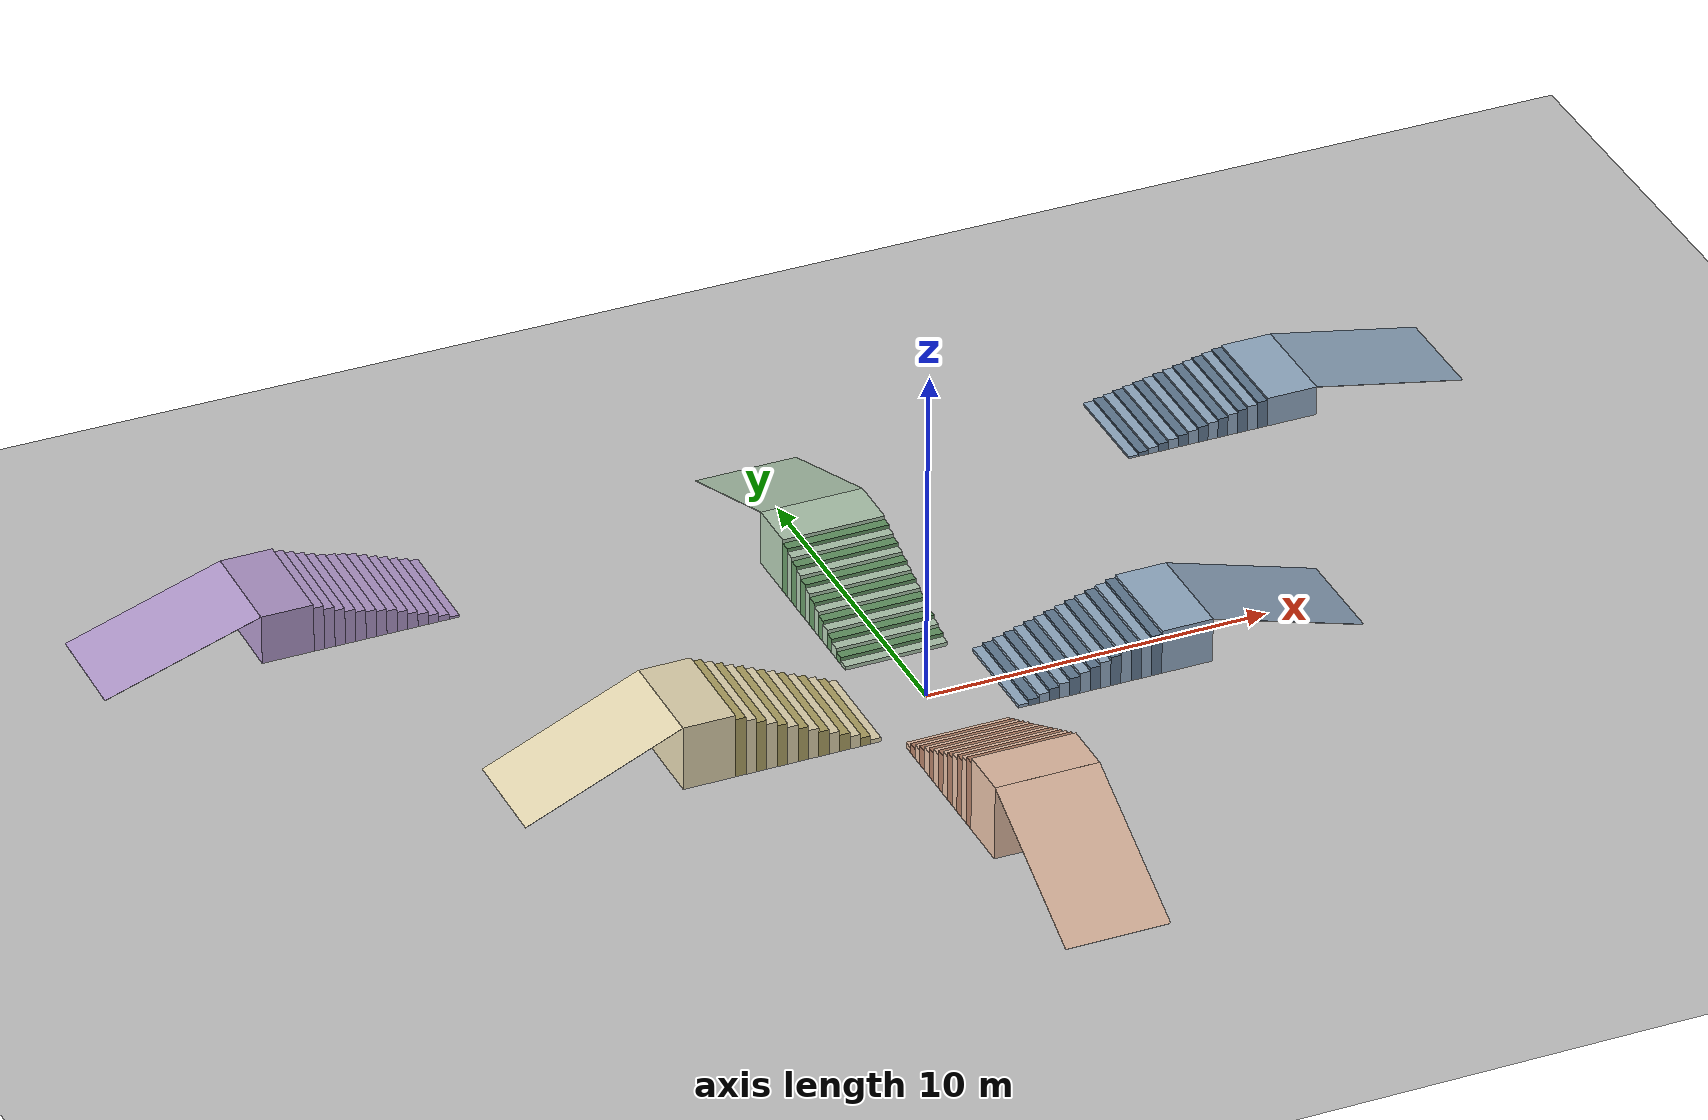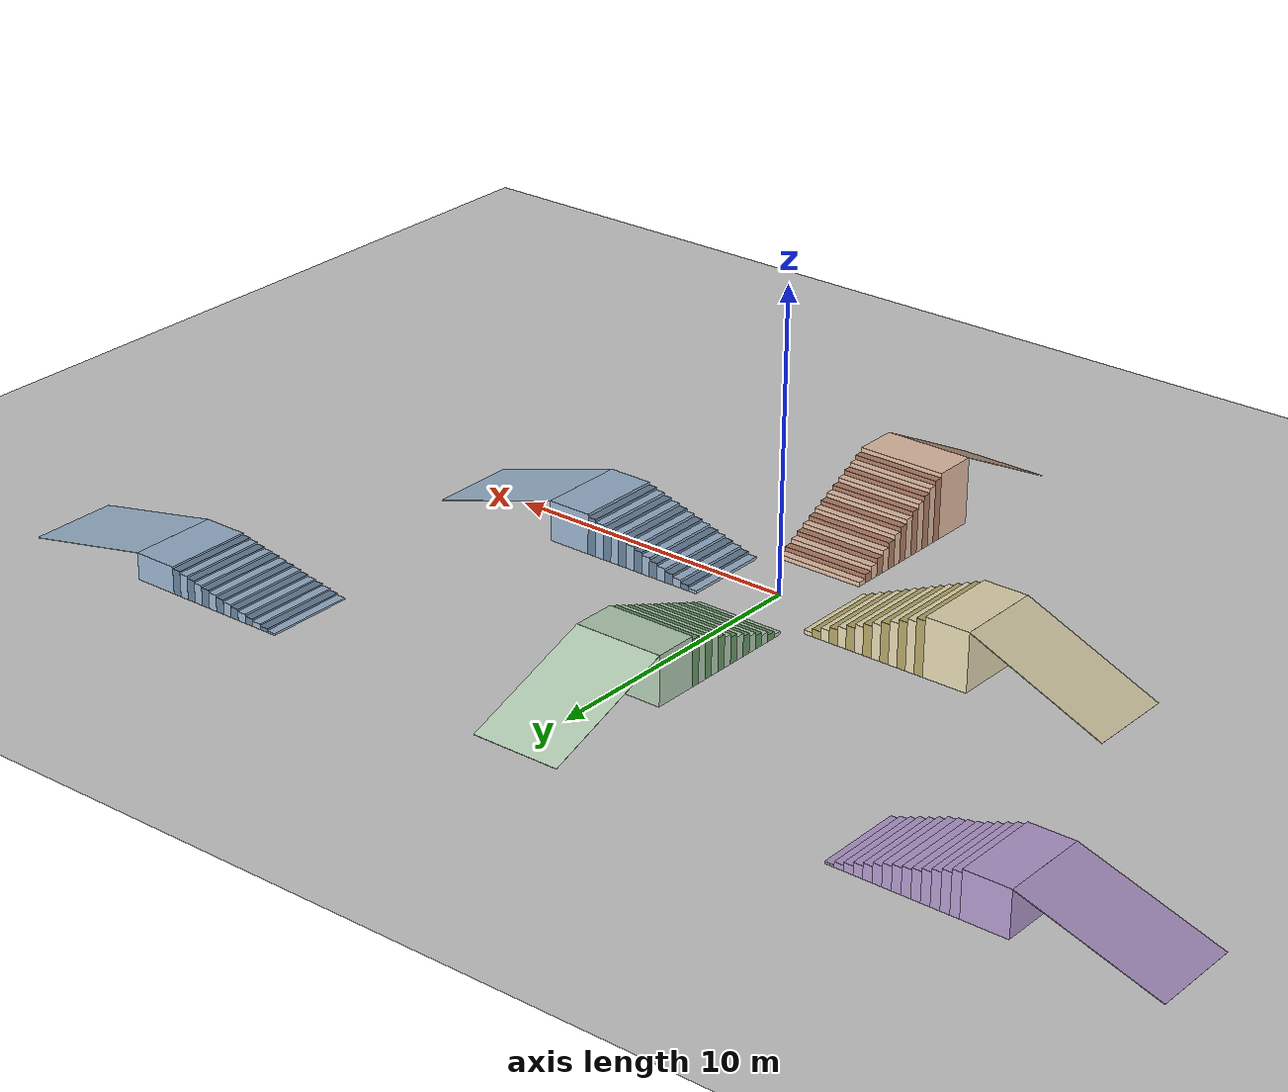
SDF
<?xml version="1.0" ?>
<sdf version="1.5">
  <world name="quadruped_stair_pro_v3_friction">

    <gui fullscreen='0'>
      <camera name='user_camera'>
        <pose>0.014996 6.624318 4.504067 0.0 0.439642 -1.572989</pose> <!-- USER_CAMERA_POSE -->
        <view_controller>orbit</view_controller>
      </camera>
    </gui>

    <physics type="ode">
      <max_step_size>0.0005</max_step_size>
      <real_time_factor>1</real_time_factor>
      <real_time_update_rate>2000</real_time_update_rate>
      <gravity>0 0 -9.81</gravity>
      <ode>
        <solver>
          <type>quick</type>
          <iters>150</iters>
          <sor>1.0</sor>
        </solver>
        <constraints>
          <cfm>0.0001</cfm>
          <erp>0.2</erp>
          <contact_max_correcting_vel>10.0</contact_max_correcting_vel>
          <contact_surface_layer>0.001</contact_surface_layer>
        </constraints>
      </ode>
    </physics>

    <include><uri>model://sun</uri></include>

    <model name="ground_plane_friction">
      <static>true</static>
      <link name="link">
        <collision name="collision">
          <geometry><plane><normal>0 0 1</normal><size>100 100</size></plane></geometry>
          <surface>
            <friction>
              <ode><mu>1.0</mu><mu2>1.0</mu2></ode>
            </friction>
          </surface>
        </collision>
        <visual name="visual">
          <geometry><plane><normal>0 0 1</normal><size>100 100</size></plane></geometry>
          <material><ambient>0.8 0.8 0.8 1</ambient><diffuse>0.8 0.8 0.8 1</diffuse></material>
        </visual>
      </link>
<link name="step_staggered_1"><pose>-10.1500 10.0000 0.0337 0 -0.0000 0</pose><visual name="v"><geometry><box><size>0.3 3.0 0.0673</size></box></geometry><material><ambient>0.7 0.6 0.8 1</ambient><diffuse>0.7 0.6 0.8 1</diffuse></material></visual><collision name="c"><geometry><box><size>0.3 3.0 0.0673</size></box></geometry><surface><friction><ode><mu>1.0</mu><mu2>1.0</mu2></ode></friction></surface></collision></link>
        <link name="step_staggered_2"><pose>-10.4500 10.0000 0.0863 0 -0.0000 0</pose><visual name="v"><geometry><box><size>0.3 3.0 0.1726</size></box></geometry><material><ambient>0.7 0.6 0.8 1</ambient><diffuse>0.7 0.6 0.8 1</diffuse></material></visual><collision name="c"><geometry><box><size>0.3 3.0 0.1726</size></box></geometry><surface><friction><ode><mu>1.0</mu><mu2>1.0</mu2></ode></friction></surface></collision></link>
        <link name="step_staggered_3"><pose>-10.7500 10.0000 0.1351 0 -0.0000 0</pose><visual name="v"><geometry><box><size>0.3 3.0 0.2703</size></box></geometry><material><ambient>0.7 0.6 0.8 1</ambient><diffuse>0.7 0.6 0.8 1</diffuse></material></visual><collision name="c"><geometry><box><size>0.3 3.0 0.2703</size></box></geometry><surface><friction><ode><mu>1.0</mu><mu2>1.0</mu2></ode></friction></surface></collision></link>
        <link name="step_staggered_4"><pose>-11.0500 10.0000 0.1954 0 -0.0000 0</pose><visual name="v"><geometry><box><size>0.3 3.0 0.3907</size></box></geometry><material><ambient>0.7 0.6 0.8 1</ambient><diffuse>0.7 0.6 0.8 1</diffuse></material></visual><collision name="c"><geometry><box><size>0.3 3.0 0.3907</size></box></geometry><surface><friction><ode><mu>1.0</mu><mu2>1.0</mu2></ode></friction></surface></collision></link>
        <link name="step_staggered_5"><pose>-11.3500 10.0000 0.2445 0 -0.0000 0</pose><visual name="v"><geometry><box><size>0.3 3.0 0.4890</size></box></geometry><material><ambient>0.7 0.6 0.8 1</ambient><diffuse>0.7 0.6 0.8 1</diffuse></material></visual><collision name="c"><geometry><box><size>0.3 3.0 0.4890</size></box></geometry><surface><friction><ode><mu>1.0</mu><mu2>1.0</mu2></ode></friction></surface></collision></link>
        <link name="step_staggered_6"><pose>-11.6500 10.0000 0.3070 0 -0.0000 0</pose><visual name="v"><geometry><box><size>0.3 3.0 0.6139</size></box></geometry><material><ambient>0.7 0.6 0.8 1</ambient><diffuse>0.7 0.6 0.8 1</diffuse></material></visual><collision name="c"><geometry><box><size>0.3 3.0 0.6139</size></box></geometry><surface><friction><ode><mu>1.0</mu><mu2>1.0</mu2></ode></friction></surface></collision></link>
        <link name="step_staggered_7"><pose>-11.9500 10.0000 0.3656 0 -0.0000 0</pose><visual name="v"><geometry><box><size>0.3 3.0 0.7312</size></box></geometry><material><ambient>0.7 0.6 0.8 1</ambient><diffuse>0.7 0.6 0.8 1</diffuse></material></visual><collision name="c"><geometry><box><size>0.3 3.0 0.7312</size></box></geometry><surface><friction><ode><mu>1.0</mu><mu2>1.0</mu2></ode></friction></surface></collision></link>
        <link name="step_staggered_8"><pose>-12.2500 10.0000 0.4017 0 -0.0000 0</pose><visual name="v"><geometry><box><size>0.3 3.0 0.8034</size></box></geometry><material><ambient>0.7 0.6 0.8 1</ambient><diffuse>0.7 0.6 0.8 1</diffuse></material></visual><collision name="c"><geometry><box><size>0.3 3.0 0.8034</size></box></geometry><surface><friction><ode><mu>1.0</mu><mu2>1.0</mu2></ode></friction></surface></collision></link>
        <link name="step_staggered_9"><pose>-12.5500 10.0000 0.4331 0 -0.0000 0</pose><visual name="v"><geometry><box><size>0.3 3.0 0.8663</size></box></geometry><material><ambient>0.7 0.6 0.8 1</ambient><diffuse>0.7 0.6 0.8 1</diffuse></material></visual><collision name="c"><geometry><box><size>0.3 3.0 0.8663</size></box></geometry><surface><friction><ode><mu>1.0</mu><mu2>1.0</mu2></ode></friction></surface></collision></link>
        <link name="step_staggered_10"><pose>-12.8500 10.0000 0.4675 0 -0.0000 0</pose><visual name="v"><geometry><box><size>0.3 3.0 0.9349</size></box></geometry><material><ambient>0.7 0.6 0.8 1</ambient><diffuse>0.7 0.6 0.8 1</diffuse></material></visual><collision name="c"><geometry><box><size>0.3 3.0 0.9349</size></box></geometry><surface><friction><ode><mu>1.0</mu><mu2>1.0</mu2></ode></friction></surface></collision></link>
        <link name="step_staggered_11"><pose>-13.1500 10.0000 0.5169 0 -0.0000 0</pose><visual name="v"><geometry><box><size>0.3 3.0 1.0338</size></box></geometry><material><ambient>0.7 0.6 0.8 1</ambient><diffuse>0.7 0.6 0.8 1</diffuse></material></visual><collision name="c"><geometry><box><size>0.3 3.0 1.0338</size></box></geometry><surface><friction><ode><mu>1.0</mu><mu2>1.0</mu2></ode></friction></surface></collision></link>
        <link name="step_staggered_12"><pose>-13.4500 10.0000 0.5718 0 -0.0000 0</pose><visual name="v"><geometry><box><size>0.3 3.0 1.1436</size></box></geometry><material><ambient>0.7 0.6 0.8 1</ambient><diffuse>0.7 0.6 0.8 1</diffuse></material></visual><collision name="c"><geometry><box><size>0.3 3.0 1.1436</size></box></geometry><surface><friction><ode><mu>1.0</mu><mu2>1.0</mu2></ode></friction></surface></collision></link>
        <link name="step_staggered_13"><pose>-13.7500 10.0000 0.6300 0 -0.0000 0</pose><visual name="v"><geometry><box><size>0.3 3.0 1.2599</size></box></geometry><material><ambient>0.7 0.6 0.8 1</ambient><diffuse>0.7 0.6 0.8 1</diffuse></material></visual><collision name="c"><geometry><box><size>0.3 3.0 1.2599</size></box></geometry><surface><friction><ode><mu>1.0</mu><mu2>1.0</mu2></ode></friction></surface></collision></link>
        <link name="step_staggered_14"><pose>-14.0500 10.0000 0.6875 0 -0.0000 0</pose><visual name="v"><geometry><box><size>0.3 3.0 1.3749</size></box></geometry><material><ambient>0.7 0.6 0.8 1</ambient><diffuse>0.7 0.6 0.8 1</diffuse></material></visual><collision name="c"><geometry><box><size>0.3 3.0 1.3749</size></box></geometry><surface><friction><ode><mu>1.0</mu><mu2>1.0</mu2></ode></friction></surface></collision></link>
        <link name="step_staggered_15"><pose>-14.9500 10.0000 0.7428 0 -0.0000 0</pose><visual name="v"><geometry><box><size>1.5 3.0 1.4856</size></box></geometry><material><ambient>0.7 0.6 0.8 1</ambient><diffuse>0.7 0.6 0.8 1</diffuse></material></visual><collision name="c"><geometry><box><size>1.5 3.0 1.4856</size></box></geometry><surface><friction><ode><mu>1.0</mu><mu2>1.0</mu2></ode></friction></surface></collision></link>
        <link name="slope_staggered"><pose>-17.9500 10.0000 0.7378 0 -0.3189 0</pose><visual name="v"><geometry><box><size>4.7389 3.0 0.01</size></box></geometry><material><ambient>0.7 0.6 0.8 1</ambient><diffuse>0.7 0.6 0.8 1</diffuse></material></visual><collision name="c"><geometry><box><size>4.7389 3.0 0.01</size></box></geometry><surface><friction><ode><mu>5.0</mu><mu2>5.0</mu2></ode></friction></surface></collision></link>
    </model>

    <model name="stair_challenge_env">
        <static>true</static>

        <link name="step_9cm_1"><pose>2.15 0 0.045 0 0 0</pose><visual name="v"><geometry><box><size>0.3 3.0 0.09</size></box></geometry><material><ambient>0.6 0.7 0.8 1</ambient><diffuse>0.6 0.7 0.8 1</diffuse></material></visual><collision name="c"><geometry><box><size>0.3 3.0 0.09</size></box></geometry><surface><friction><ode><mu>1.0</mu><mu2>1.0</mu2></ode></friction></surface></collision></link>
        <link name="step_9cm_2"><pose>2.45 0 0.090 0 0 0</pose><visual name="v"><geometry><box><size>0.3 3.0 0.18</size></box></geometry><material><ambient>0.4 0.5 0.6 1</ambient><diffuse>0.4 0.5 0.6 1</diffuse></material></visual><collision name="c"><geometry><box><size>0.3 3.0 0.18</size></box></geometry><surface><friction><ode><mu>1.0</mu><mu2>1.0</mu2></ode></friction></surface></collision></link>
        <link name="step_9cm_3"><pose>2.75 0 0.135 0 0 0</pose><visual name="v"><geometry><box><size>0.3 3.0 0.27</size></box></geometry><material><ambient>0.6 0.7 0.8 1</ambient><diffuse>0.6 0.7 0.8 1</diffuse></material></visual><collision name="c"><geometry><box><size>0.3 3.0 0.27</size></box></geometry><surface><friction><ode><mu>1.0</mu><mu2>1.0</mu2></ode></friction></surface></collision></link>
        <link name="step_9cm_4"><pose>3.05 0 0.180 0 0 0</pose><visual name="v"><geometry><box><size>0.3 3.0 0.36</size></box></geometry><material><ambient>0.4 0.5 0.6 1</ambient><diffuse>0.4 0.5 0.6 1</diffuse></material></visual><collision name="c"><geometry><box><size>0.3 3.0 0.36</size></box></geometry><surface><friction><ode><mu>1.0</mu><mu2>1.0</mu2></ode></friction></surface></collision></link>
        <link name="step_9cm_5"><pose>3.35 0 0.225 0 0 0</pose><visual name="v"><geometry><box><size>0.3 3.0 0.45</size></box></geometry><material><ambient>0.6 0.7 0.8 1</ambient><diffuse>0.6 0.7 0.8 1</diffuse></material></visual><collision name="c"><geometry><box><size>0.3 3.0 0.45</size></box></geometry><surface><friction><ode><mu>1.0</mu><mu2>1.0</mu2></ode></friction></surface></collision></link>
        <link name="step_9cm_6"><pose>3.65 0 0.270 0 0 0</pose><visual name="v"><geometry><box><size>0.3 3.0 0.54</size></box></geometry><material><ambient>0.4 0.5 0.6 1</ambient><diffuse>0.4 0.5 0.6 1</diffuse></material></visual><collision name="c"><geometry><box><size>0.3 3.0 0.54</size></box></geometry><surface><friction><ode><mu>1.0</mu><mu2>1.0</mu2></ode></friction></surface></collision></link>
        <link name="step_9cm_7"><pose>3.95 0 0.315 0 0 0</pose><visual name="v"><geometry><box><size>0.3 3.0 0.63</size></box></geometry><material><ambient>0.6 0.7 0.8 1</ambient><diffuse>0.6 0.7 0.8 1</diffuse></material></visual><collision name="c"><geometry><box><size>0.3 3.0 0.63</size></box></geometry><surface><friction><ode><mu>1.0</mu><mu2>1.0</mu2></ode></friction></surface></collision></link>
        <link name="step_9cm_8"><pose>4.25 0 0.360 0 0 0</pose><visual name="v"><geometry><box><size>0.3 3.0 0.72</size></box></geometry><material><ambient>0.4 0.5 0.6 1</ambient><diffuse>0.4 0.5 0.6 1</diffuse></material></visual><collision name="c"><geometry><box><size>0.3 3.0 0.72</size></box></geometry><surface><friction><ode><mu>1.0</mu><mu2>1.0</mu2></ode></friction></surface></collision></link>
        <link name="step_9cm_9"><pose>4.55 0 0.405 0 0 0</pose><visual name="v"><geometry><box><size>0.3 3.0 0.81</size></box></geometry><material><ambient>0.6 0.7 0.8 1</ambient><diffuse>0.6 0.7 0.8 1</diffuse></material></visual><collision name="c"><geometry><box><size>0.3 3.0 0.81</size></box></geometry><surface><friction><ode><mu>1.0</mu><mu2>1.0</mu2></ode></friction></surface></collision></link>
        <link name="step_9cm_10"><pose>4.85 0 0.450 0 0 0</pose><visual name="v"><geometry><box><size>0.3 3.0 0.90</size></box></geometry><material><ambient>0.4 0.5 0.6 1</ambient><diffuse>0.4 0.5 0.6 1</diffuse></material></visual><collision name="c"><geometry><box><size>0.3 3.0 0.90</size></box></geometry><surface><friction><ode><mu>1.0</mu><mu2>1.0</mu2></ode></friction></surface></collision></link>
        <link name="step_9cm_11"><pose>5.15 0 0.495 0 0 0</pose><visual name="v"><geometry><box><size>0.3 3.0 0.99</size></box></geometry><material><ambient>0.6 0.7 0.8 1</ambient><diffuse>0.6 0.7 0.8 1</diffuse></material></visual><collision name="c"><geometry><box><size>0.3 3.0 0.99</size></box></geometry><surface><friction><ode><mu>1.0</mu><mu2>1.0</mu2></ode></friction></surface></collision></link>
        <link name="step_9cm_12"><pose>5.45 0 0.540 0 0 0</pose><visual name="v"><geometry><box><size>0.3 3.0 1.08</size></box></geometry><material><ambient>0.4 0.5 0.6 1</ambient><diffuse>0.4 0.5 0.6 1</diffuse></material></visual><collision name="c"><geometry><box><size>0.3 3.0 1.08</size></box></geometry><surface><friction><ode><mu>1.0</mu><mu2>1.0</mu2></ode></friction></surface></collision></link>
        <link name="step_9cm_13"><pose>5.75 0 0.585 0 0 0</pose><visual name="v"><geometry><box><size>0.3 3.0 1.17</size></box></geometry><material><ambient>0.6 0.7 0.8 1</ambient><diffuse>0.6 0.7 0.8 1</diffuse></material></visual><collision name="c"><geometry><box><size>0.3 3.0 1.17</size></box></geometry><surface><friction><ode><mu>1.0</mu><mu2>1.0</mu2></ode></friction></surface></collision></link>
        <link name="step_9cm_14"><pose>6.05 0 0.630 0 0 0</pose><visual name="v"><geometry><box><size>0.3 3.0 1.26</size></box></geometry><material><ambient>0.4 0.5 0.6 1</ambient><diffuse>0.4 0.5 0.6 1</diffuse></material></visual><collision name="c"><geometry><box><size>0.3 3.0 1.26</size></box></geometry><surface><friction><ode><mu>1.0</mu><mu2>1.0</mu2></ode></friction></surface></collision></link>
        <link name="step_9cm_15"><pose>6.95 0 0.675 0 0 0</pose><visual name="v"><geometry><box><size>1.5 3.0 1.35</size></box></geometry><material><ambient>0.6 0.7 0.8 1</ambient><diffuse>0.6 0.7 0.8 1</diffuse></material></visual><collision name="c"><geometry><box><size>1.5 3.0 1.35</size></box></geometry><surface><friction><ode><mu>1.0</mu><mu2>1.0</mu2></ode></friction></surface></collision></link>

        <link name="step_11cm_1"><pose>0 2.15 0.055 0 0 0</pose><visual name="v"><geometry><box><size>3.0 0.3 0.11</size></box></geometry><material><ambient>0.7 0.8 0.7 1</ambient><diffuse>0.7 0.8 0.7 1</diffuse></material></visual><collision name="c"><geometry><box><size>3.0 0.3 0.11</size></box></geometry><surface><friction><ode><mu>1.0</mu><mu2>1.0</mu2></ode></friction></surface></collision></link>
        <link name="step_11cm_2"><pose>0 2.45 0.110 0 0 0</pose><visual name="v"><geometry><box><size>3.0 0.3 0.22</size></box></geometry><material><ambient>0.4 0.6 0.4 1</ambient><diffuse>0.4 0.6 0.4 1</diffuse></material></visual><collision name="c"><geometry><box><size>3.0 0.3 0.22</size></box></geometry><surface><friction><ode><mu>1.0</mu><mu2>1.0</mu2></ode></friction></surface></collision></link>
        <link name="step_11cm_3"><pose>0 2.75 0.165 0 0 0</pose><visual name="v"><geometry><box><size>3.0 0.3 0.33</size></box></geometry><material><ambient>0.7 0.8 0.7 1</ambient><diffuse>0.7 0.8 0.7 1</diffuse></material></visual><collision name="c"><geometry><box><size>3.0 0.3 0.33</size></box></geometry><surface><friction><ode><mu>1.0</mu><mu2>1.0</mu2></ode></friction></surface></collision></link>
        <link name="step_11cm_4"><pose>0 3.05 0.220 0 0 0</pose><visual name="v"><geometry><box><size>3.0 0.3 0.44</size></box></geometry><material><ambient>0.4 0.6 0.4 1</ambient><diffuse>0.4 0.6 0.4 1</diffuse></material></visual><collision name="c"><geometry><box><size>3.0 0.3 0.44</size></box></geometry><surface><friction><ode><mu>1.0</mu><mu2>1.0</mu2></ode></friction></surface></collision></link>
        <link name="step_11cm_5"><pose>0 3.35 0.275 0 0 0</pose><visual name="v"><geometry><box><size>3.0 0.3 0.55</size></box></geometry><material><ambient>0.7 0.8 0.7 1</ambient><diffuse>0.7 0.8 0.7 1</diffuse></material></visual><collision name="c"><geometry><box><size>3.0 0.3 0.55</size></box></geometry><surface><friction><ode><mu>1.0</mu><mu2>1.0</mu2></ode></friction></surface></collision></link>
        <link name="step_11cm_6"><pose>0 3.65 0.330 0 0 0</pose><visual name="v"><geometry><box><size>3.0 0.3 0.66</size></box></geometry><material><ambient>0.4 0.6 0.4 1</ambient><diffuse>0.4 0.6 0.4 1</diffuse></material></visual><collision name="c"><geometry><box><size>3.0 0.3 0.66</size></box></geometry><surface><friction><ode><mu>1.0</mu><mu2>1.0</mu2></ode></friction></surface></collision></link>
        <link name="step_11cm_7"><pose>0 3.95 0.385 0 0 0</pose><visual name="v"><geometry><box><size>3.0 0.3 0.77</size></box></geometry><material><ambient>0.7 0.8 0.7 1</ambient><diffuse>0.7 0.8 0.7 1</diffuse></material></visual><collision name="c"><geometry><box><size>3.0 0.3 0.77</size></box></geometry><surface><friction><ode><mu>1.0</mu><mu2>1.0</mu2></ode></friction></surface></collision></link>
        <link name="step_11cm_8"><pose>0 4.25 0.440 0 0 0</pose><visual name="v"><geometry><box><size>3.0 0.3 0.88</size></box></geometry><material><ambient>0.4 0.6 0.4 1</ambient><diffuse>0.4 0.6 0.4 1</diffuse></material></visual><collision name="c"><geometry><box><size>3.0 0.3 0.88</size></box></geometry><surface><friction><ode><mu>1.0</mu><mu2>1.0</mu2></ode></friction></surface></collision></link>
        <link name="step_11cm_9"><pose>0 4.55 0.495 0 0 0</pose><visual name="v"><geometry><box><size>3.0 0.3 0.99</size></box></geometry><material><ambient>0.7 0.8 0.7 1</ambient><diffuse>0.7 0.8 0.7 1</diffuse></material></visual><collision name="c"><geometry><box><size>3.0 0.3 0.99</size></box></geometry><surface><friction><ode><mu>1.0</mu><mu2>1.0</mu2></ode></friction></surface></collision></link>
        <link name="step_11cm_10"><pose>0 4.85 0.550 0 0 0</pose><visual name="v"><geometry><box><size>3.0 0.3 1.10</size></box></geometry><material><ambient>0.4 0.6 0.4 1</ambient><diffuse>0.4 0.6 0.4 1</diffuse></material></visual><collision name="c"><geometry><box><size>3.0 0.3 1.10</size></box></geometry><surface><friction><ode><mu>1.0</mu><mu2>1.0</mu2></ode></friction></surface></collision></link>
        <link name="step_11cm_11"><pose>0 5.15 0.605 0 0 0</pose><visual name="v"><geometry><box><size>3.0 0.3 1.21</size></box></geometry><material><ambient>0.7 0.8 0.7 1</ambient><diffuse>0.7 0.8 0.7 1</diffuse></material></visual><collision name="c"><geometry><box><size>3.0 0.3 1.21</size></box></geometry><surface><friction><ode><mu>1.0</mu><mu2>1.0</mu2></ode></friction></surface></collision></link>
        <link name="step_11cm_12"><pose>0 5.45 0.660 0 0 0</pose><visual name="v"><geometry><box><size>3.0 0.3 1.32</size></box></geometry><material><ambient>0.4 0.6 0.4 1</ambient><diffuse>0.4 0.6 0.4 1</diffuse></material></visual><collision name="c"><geometry><box><size>3.0 0.3 1.32</size></box></geometry><surface><friction><ode><mu>1.0</mu><mu2>1.0</mu2></ode></friction></surface></collision></link>
        <link name="step_11cm_13"><pose>0 5.75 0.715 0 0 0</pose><visual name="v"><geometry><box><size>3.0 0.3 1.43</size></box></geometry><material><ambient>0.7 0.8 0.7 1</ambient><diffuse>0.7 0.8 0.7 1</diffuse></material></visual><collision name="c"><geometry><box><size>3.0 0.3 1.43</size></box></geometry><surface><friction><ode><mu>1.0</mu><mu2>1.0</mu2></ode></friction></surface></collision></link>
        <link name="step_11cm_14"><pose>0 6.05 0.770 0 0 0</pose><visual name="v"><geometry><box><size>3.0 0.3 1.54</size></box></geometry><material><ambient>0.4 0.6 0.4 1</ambient><diffuse>0.4 0.6 0.4 1</diffuse></material></visual><collision name="c"><geometry><box><size>3.0 0.3 1.54</size></box></geometry><surface><friction><ode><mu>1.0</mu><mu2>1.0</mu2></ode></friction></surface></collision></link>
        <link name="step_11cm_15"><pose>0 6.95 0.825 0 0 0</pose><visual name="v"><geometry><box><size>3.0 1.5 1.65</size></box></geometry><material><ambient>0.7 0.8 0.7 1</ambient><diffuse>0.7 0.8 0.7 1</diffuse></material></visual><collision name="c"><geometry><box><size>3.0 1.5 1.65</size></box></geometry><surface><friction><ode><mu>1.0</mu><mu2>1.0</mu2></ode></friction></surface></collision></link>

        <link name="step_13cm_1"><pose>-2.15 0 0.065 0 0 0</pose><visual name="v"><geometry><box><size>0.3 3.0 0.13</size></box></geometry><material><ambient>0.9 0.85 0.7 1</ambient><diffuse>0.9 0.85 0.7 1</diffuse></material></visual><collision name="c"><geometry><box><size>0.3 3.0 0.13</size></box></geometry><surface><friction><ode><mu>1.0</mu><mu2>1.0</mu2></ode></friction></surface></collision></link>
        <link name="step_13cm_2"><pose>-2.45 0 0.130 0 0 0</pose><visual name="v"><geometry><box><size>0.3 3.0 0.26</size></box></geometry><material><ambient>0.7 0.65 0.4 1</ambient><diffuse>0.7 0.65 0.4 1</diffuse></material></visual><collision name="c"><geometry><box><size>0.3 3.0 0.26</size></box></geometry><surface><friction><ode><mu>1.0</mu><mu2>1.0</mu2></ode></friction></surface></collision></link>
        <link name="step_13cm_3"><pose>-2.75 0 0.195 0 0 0</pose><visual name="v"><geometry><box><size>0.3 3.0 0.39</size></box></geometry><material><ambient>0.9 0.85 0.7 1</ambient><diffuse>0.9 0.85 0.7 1</diffuse></material></visual><collision name="c"><geometry><box><size>0.3 3.0 0.39</size></box></geometry><surface><friction><ode><mu>1.0</mu><mu2>1.0</mu2></ode></friction></surface></collision></link>
        <link name="step_13cm_4"><pose>-3.05 0 0.260 0 0 0</pose><visual name="v"><geometry><box><size>0.3 3.0 0.52</size></box></geometry><material><ambient>0.7 0.65 0.4 1</ambient><diffuse>0.7 0.65 0.4 1</diffuse></material></visual><collision name="c"><geometry><box><size>0.3 3.0 0.52</size></box></geometry><surface><friction><ode><mu>1.0</mu><mu2>1.0</mu2></ode></friction></surface></collision></link>
        <link name="step_13cm_5"><pose>-3.35 0 0.325 0 0 0</pose><visual name="v"><geometry><box><size>0.3 3.0 0.65</size></box></geometry><material><ambient>0.9 0.85 0.7 1</ambient><diffuse>0.9 0.85 0.7 1</diffuse></material></visual><collision name="c"><geometry><box><size>0.3 3.0 0.65</size></box></geometry><surface><friction><ode><mu>1.0</mu><mu2>1.0</mu2></ode></friction></surface></collision></link>
        <link name="step_13cm_6"><pose>-3.65 0 0.390 0 0 0</pose><visual name="v"><geometry><box><size>0.3 3.0 0.78</size></box></geometry><material><ambient>0.7 0.65 0.4 1</ambient><diffuse>0.7 0.65 0.4 1</diffuse></material></visual><collision name="c"><geometry><box><size>0.3 3.0 0.78</size></box></geometry><surface><friction><ode><mu>1.0</mu><mu2>1.0</mu2></ode></friction></surface></collision></link>
        <link name="step_13cm_7"><pose>-3.95 0 0.455 0 0 0</pose><visual name="v"><geometry><box><size>0.3 3.0 0.91</size></box></geometry><material><ambient>0.9 0.85 0.7 1</ambient><diffuse>0.9 0.85 0.7 1</diffuse></material></visual><collision name="c"><geometry><box><size>0.3 3.0 0.91</size></box></geometry><surface><friction><ode><mu>1.0</mu><mu2>1.0</mu2></ode></friction></surface></collision></link>
        <link name="step_13cm_8"><pose>-4.25 0 0.520 0 0 0</pose><visual name="v"><geometry><box><size>0.3 3.0 1.04</size></box></geometry><material><ambient>0.7 0.65 0.4 1</ambient><diffuse>0.7 0.65 0.4 1</diffuse></material></visual><collision name="c"><geometry><box><size>0.3 3.0 1.04</size></box></geometry><surface><friction><ode><mu>1.0</mu><mu2>1.0</mu2></ode></friction></surface></collision></link>
        <link name="step_13cm_9"><pose>-4.55 0 0.585 0 0 0</pose><visual name="v"><geometry><box><size>0.3 3.0 1.17</size></box></geometry><material><ambient>0.9 0.85 0.7 1</ambient><diffuse>0.9 0.85 0.7 1</diffuse></material></visual><collision name="c"><geometry><box><size>0.3 3.0 1.17</size></box></geometry><surface><friction><ode><mu>1.0</mu><mu2>1.0</mu2></ode></friction></surface></collision></link>
        <link name="step_13cm_10"><pose>-4.85 0 0.650 0 0 0</pose><visual name="v"><geometry><box><size>0.3 3.0 1.30</size></box></geometry><material><ambient>0.7 0.65 0.4 1</ambient><diffuse>0.7 0.65 0.4 1</diffuse></material></visual><collision name="c"><geometry><box><size>0.3 3.0 1.30</size></box></geometry><surface><friction><ode><mu>1.0</mu><mu2>1.0</mu2></ode></friction></surface></collision></link>
        <link name="step_13cm_11"><pose>-5.15 0 0.715 0 0 0</pose><visual name="v"><geometry><box><size>0.3 3.0 1.43</size></box></geometry><material><ambient>0.9 0.85 0.7 1</ambient><diffuse>0.9 0.85 0.7 1</diffuse></material></visual><collision name="c"><geometry><box><size>0.3 3.0 1.43</size></box></geometry><surface><friction><ode><mu>1.0</mu><mu2>1.0</mu2></ode></friction></surface></collision></link>
        <link name="step_13cm_12"><pose>-5.45 0 0.780 0 0 0</pose><visual name="v"><geometry><box><size>0.3 3.0 1.56</size></box></geometry><material><ambient>0.7 0.65 0.4 1</ambient><diffuse>0.7 0.65 0.4 1</diffuse></material></visual><collision name="c"><geometry><box><size>0.3 3.0 1.56</size></box></geometry><surface><friction><ode><mu>1.0</mu><mu2>1.0</mu2></ode></friction></surface></collision></link>
        <link name="step_13cm_13"><pose>-5.75 0 0.845 0 0 0</pose><visual name="v"><geometry><box><size>0.3 3.0 1.69</size></box></geometry><material><ambient>0.9 0.85 0.7 1</ambient><diffuse>0.9 0.85 0.7 1</diffuse></material></visual><collision name="c"><geometry><box><size>0.3 3.0 1.69</size></box></geometry><surface><friction><ode><mu>1.0</mu><mu2>1.0</mu2></ode></friction></surface></collision></link>
        <link name="step_13cm_14"><pose>-6.05 0 0.910 0 0 0</pose><visual name="v"><geometry><box><size>0.3 3.0 1.82</size></box></geometry><material><ambient>0.7 0.65 0.4 1</ambient><diffuse>0.7 0.65 0.4 1</diffuse></material></visual><collision name="c"><geometry><box><size>0.3 3.0 1.82</size></box></geometry><surface><friction><ode><mu>1.0</mu><mu2>1.0</mu2></ode></friction></surface></collision></link>
        <link name="step_13cm_15"><pose>-6.95 0 0.975 0 0 0</pose><visual name="v"><geometry><box><size>1.5 3.0 1.95</size></box></geometry><material><ambient>0.9 0.85 0.7 1</ambient><diffuse>0.9 0.85 0.7 1</diffuse></material></visual><collision name="c"><geometry><box><size>1.5 3.0 1.95</size></box></geometry><surface><friction><ode><mu>1.0</mu><mu2>1.0</mu2></ode></friction></surface></collision></link>

        <link name="step_15cm_1"><pose>0 -2.15 0.075 0 0 0</pose><visual name="v"><geometry><box><size>3.0 0.3 0.15</size></box></geometry><material><ambient>0.9 0.75 0.65 1</ambient><diffuse>0.9 0.75 0.65 1</diffuse></material></visual><collision name="c"><geometry><box><size>3.0 0.3 0.15</size></box></geometry><surface><friction><ode><mu>1.0</mu><mu2>1.0</mu2></ode></friction></surface></collision></link>
        <link name="step_15cm_2"><pose>0 -2.45 0.150 0 0 0</pose><visual name="v"><geometry><box><size>3.0 0.3 0.30</size></box></geometry><material><ambient>0.7 0.5 0.4 1</ambient><diffuse>0.7 0.5 0.4 1</diffuse></material></visual><collision name="c"><geometry><box><size>3.0 0.3 0.30</size></box></geometry><surface><friction><ode><mu>1.0</mu><mu2>1.0</mu2></ode></friction></surface></collision></link>
        <link name="step_15cm_3"><pose>0 -2.75 0.225 0 0 0</pose><visual name="v"><geometry><box><size>3.0 0.3 0.45</size></box></geometry><material><ambient>0.9 0.75 0.65 1</ambient><diffuse>0.9 0.75 0.65 1</diffuse></material></visual><collision name="c"><geometry><box><size>3.0 0.3 0.45</size></box></geometry><surface><friction><ode><mu>1.0</mu><mu2>1.0</mu2></ode></friction></surface></collision></link>
        <link name="step_15cm_4"><pose>0 -3.05 0.300 0 0 0</pose><visual name="v"><geometry><box><size>3.0 0.3 0.60</size></box></geometry><material><ambient>0.7 0.5 0.4 1</ambient><diffuse>0.7 0.5 0.4 1</diffuse></material></visual><collision name="c"><geometry><box><size>3.0 0.3 0.60</size></box></geometry><surface><friction><ode><mu>1.0</mu><mu2>1.0</mu2></ode></friction></surface></collision></link>
        <link name="step_15cm_5"><pose>0 -3.35 0.375 0 0 0</pose><visual name="v"><geometry><box><size>3.0 0.3 0.75</size></box></geometry><material><ambient>0.9 0.75 0.65 1</ambient><diffuse>0.9 0.75 0.65 1</diffuse></material></visual><collision name="c"><geometry><box><size>3.0 0.3 0.75</size></box></geometry><surface><friction><ode><mu>1.0</mu><mu2>1.0</mu2></ode></friction></surface></collision></link>
        <link name="step_15cm_6"><pose>0 -3.65 0.450 0 0 0</pose><visual name="v"><geometry><box><size>3.0 0.3 0.90</size></box></geometry><material><ambient>0.7 0.5 0.4 1</ambient><diffuse>0.7 0.5 0.4 1</diffuse></material></visual><collision name="c"><geometry><box><size>3.0 0.3 0.90</size></box></geometry><surface><friction><ode><mu>1.0</mu><mu2>1.0</mu2></ode></friction></surface></collision></link>
        <link name="step_15cm_7"><pose>0 -3.95 0.525 0 0 0</pose><visual name="v"><geometry><box><size>3.0 0.3 1.05</size></box></geometry><material><ambient>0.9 0.75 0.65 1</ambient><diffuse>0.9 0.75 0.65 1</diffuse></material></visual><collision name="c"><geometry><box><size>3.0 0.3 1.05</size></box></geometry><surface><friction><ode><mu>1.0</mu><mu2>1.0</mu2></ode></friction></surface></collision></link>
        <link name="step_15cm_8"><pose>0 -4.25 0.600 0 0 0</pose><visual name="v"><geometry><box><size>3.0 0.3 1.20</size></box></geometry><material><ambient>0.7 0.5 0.4 1</ambient><diffuse>0.7 0.5 0.4 1</diffuse></material></visual><collision name="c"><geometry><box><size>3.0 0.3 1.20</size></box></geometry><surface><friction><ode><mu>1.0</mu><mu2>1.0</mu2></ode></friction></surface></collision></link>
        <link name="step_15cm_9"><pose>0 -4.55 0.675 0 0 0</pose><visual name="v"><geometry><box><size>3.0 0.3 1.35</size></box></geometry><material><ambient>0.9 0.75 0.65 1</ambient><diffuse>0.9 0.75 0.65 1</diffuse></material></visual><collision name="c"><geometry><box><size>3.0 0.3 1.35</size></box></geometry><surface><friction><ode><mu>1.0</mu><mu2>1.0</mu2></ode></friction></surface></collision></link>
        <link name="step_15cm_10"><pose>0 -4.85 0.750 0 0 0</pose><visual name="v"><geometry><box><size>3.0 0.3 1.50</size></box></geometry><material><ambient>0.7 0.5 0.4 1</ambient><diffuse>0.7 0.5 0.4 1</diffuse></material></visual><collision name="c"><geometry><box><size>3.0 0.3 1.50</size></box></geometry><surface><friction><ode><mu>1.0</mu><mu2>1.0</mu2></ode></friction></surface></collision></link>
        <link name="step_15cm_11"><pose>0 -5.15 0.825 0 0 0</pose><visual name="v"><geometry><box><size>3.0 0.3 1.65</size></box></geometry><material><ambient>0.9 0.75 0.65 1</ambient><diffuse>0.9 0.75 0.65 1</diffuse></material></visual><collision name="c"><geometry><box><size>3.0 0.3 1.65</size></box></geometry><surface><friction><ode><mu>1.0</mu><mu2>1.0</mu2></ode></friction></surface></collision></link>
        <link name="step_15cm_12"><pose>0 -5.45 0.900 0 0 0</pose><visual name="v"><geometry><box><size>3.0 0.3 1.80</size></box></geometry><material><ambient>0.7 0.5 0.4 1</ambient><diffuse>0.7 0.5 0.4 1</diffuse></material></visual><collision name="c"><geometry><box><size>3.0 0.3 1.80</size></box></geometry><surface><friction><ode><mu>1.0</mu><mu2>1.0</mu2></ode></friction></surface></collision></link>
        <link name="step_15cm_13"><pose>0 -5.75 0.975 0 0 0</pose><visual name="v"><geometry><box><size>3.0 0.3 1.95</size></box></geometry><material><ambient>0.9 0.75 0.65 1</ambient><diffuse>0.9 0.75 0.65 1</diffuse></material></visual><collision name="c"><geometry><box><size>3.0 0.3 1.95</size></box></geometry><surface><friction><ode><mu>1.0</mu><mu2>1.0</mu2></ode></friction></surface></collision></link>
        <link name="step_15cm_14"><pose>0 -6.05 1.050 0 0 0</pose><visual name="v"><geometry><box><size>3.0 0.3 2.10</size></box></geometry><material><ambient>0.7 0.5 0.4 1</ambient><diffuse>0.7 0.5 0.4 1</diffuse></material></visual><collision name="c"><geometry><box><size>3.0 0.3 2.10</size></box></geometry><surface><friction><ode><mu>1.0</mu><mu2>1.0</mu2></ode></friction></surface></collision></link>
        <link name="step_15cm_15"><pose>0 -6.95 1.125 0 0 0</pose><visual name="v"><geometry><box><size>3.0 1.5 2.25</size></box></geometry><material><ambient>0.9 0.75 0.65 1</ambient><diffuse>0.9 0.75 0.65 1</diffuse></material></visual><collision name="c"><geometry><box><size>3.0 1.5 2.25</size></box></geometry><surface><friction><ode><mu>1.0</mu><mu2>1.0</mu2></ode></friction></surface></collision></link>

        <link name="step_6cm_1"><pose>10.00 10.0 0.030 0 0 0</pose><visual name="v"><geometry><box><size>0.3 3.0 0.06</size></box></geometry><material><ambient>0.6 0.7 0.8 1</ambient><diffuse>0.6 0.7 0.8 1</diffuse></material></visual><collision name="c"><geometry><box><size>0.3 3.0 0.06</size></box></geometry><surface><friction><ode><mu>1.0</mu><mu2>1.0</mu2></ode></friction></surface></collision></link>
        <link name="step_6cm_2"><pose>10.30 10.0 0.060 0 0 0</pose><visual name="v"><geometry><box><size>0.3 3.0 0.12</size></box></geometry><material><ambient>0.4 0.5 0.6 1</ambient><diffuse>0.4 0.5 0.6 1</diffuse></material></visual><collision name="c"><geometry><box><size>0.3 3.0 0.12</size></box></geometry><surface><friction><ode><mu>1.0</mu><mu2>1.0</mu2></ode></friction></surface></collision></link>
        <link name="step_6cm_3"><pose>10.60 10.0 0.090 0 0 0</pose><visual name="v"><geometry><box><size>0.3 3.0 0.18</size></box></geometry><material><ambient>0.6 0.7 0.8 1</ambient><diffuse>0.6 0.7 0.8 1</diffuse></material></visual><collision name="c"><geometry><box><size>0.3 3.0 0.18</size></box></geometry><surface><friction><ode><mu>1.0</mu><mu2>1.0</mu2></ode></friction></surface></collision></link>
        <link name="step_6cm_4"><pose>10.90 10.0 0.120 0 0 0</pose><visual name="v"><geometry><box><size>0.3 3.0 0.24</size></box></geometry><material><ambient>0.4 0.5 0.6 1</ambient><diffuse>0.4 0.5 0.6 1</diffuse></material></visual><collision name="c"><geometry><box><size>0.3 3.0 0.24</size></box></geometry><surface><friction><ode><mu>1.0</mu><mu2>1.0</mu2></ode></friction></surface></collision></link>
        <link name="step_6cm_5"><pose>11.20 10.0 0.150 0 0 0</pose><visual name="v"><geometry><box><size>0.3 3.0 0.30</size></box></geometry><material><ambient>0.6 0.7 0.8 1</ambient><diffuse>0.6 0.7 0.8 1</diffuse></material></visual><collision name="c"><geometry><box><size>0.3 3.0 0.30</size></box></geometry><surface><friction><ode><mu>1.0</mu><mu2>1.0</mu2></ode></friction></surface></collision></link>
        <link name="step_6cm_6"><pose>11.50 10.0 0.180 0 0 0</pose><visual name="v"><geometry><box><size>0.3 3.0 0.36</size></box></geometry><material><ambient>0.4 0.5 0.6 1</ambient><diffuse>0.4 0.5 0.6 1</diffuse></material></visual><collision name="c"><geometry><box><size>0.3 3.0 0.36</size></box></geometry><surface><friction><ode><mu>1.0</mu><mu2>1.0</mu2></ode></friction></surface></collision></link>
        <link name="step_6cm_7"><pose>11.80 10.0 0.210 0 0 0</pose><visual name="v"><geometry><box><size>0.3 3.0 0.42</size></box></geometry><material><ambient>0.6 0.7 0.8 1</ambient><diffuse>0.6 0.7 0.8 1</diffuse></material></visual><collision name="c"><geometry><box><size>0.3 3.0 0.42</size></box></geometry><surface><friction><ode><mu>1.0</mu><mu2>1.0</mu2></ode></friction></surface></collision></link>
        <link name="step_6cm_8"><pose>12.10 10.0 0.240 0 0 0</pose><visual name="v"><geometry><box><size>0.3 3.0 0.48</size></box></geometry><material><ambient>0.4 0.5 0.6 1</ambient><diffuse>0.4 0.5 0.6 1</diffuse></material></visual><collision name="c"><geometry><box><size>0.3 3.0 0.48</size></box></geometry><surface><friction><ode><mu>1.0</mu><mu2>1.0</mu2></ode></friction></surface></collision></link>
        <link name="step_6cm_9"><pose>12.40 10.0 0.270 0 0 0</pose><visual name="v"><geometry><box><size>0.3 3.0 0.54</size></box></geometry><material><ambient>0.6 0.7 0.8 1</ambient><diffuse>0.6 0.7 0.8 1</diffuse></material></visual><collision name="c"><geometry><box><size>0.3 3.0 0.54</size></box></geometry><surface><friction><ode><mu>1.0</mu><mu2>1.0</mu2></ode></friction></surface></collision></link>
        <link name="step_6cm_10"><pose>12.70 10.0 0.300 0 0 0</pose><visual name="v"><geometry><box><size>0.3 3.0 0.60</size></box></geometry><material><ambient>0.4 0.5 0.6 1</ambient><diffuse>0.4 0.5 0.6 1</diffuse></material></visual><collision name="c"><geometry><box><size>0.3 3.0 0.60</size></box></geometry><surface><friction><ode><mu>1.0</mu><mu2>1.0</mu2></ode></friction></surface></collision></link>
        <link name="step_6cm_11"><pose>13.00 10.0 0.330 0 0 0</pose><visual name="v"><geometry><box><size>0.3 3.0 0.66</size></box></geometry><material><ambient>0.6 0.7 0.8 1</ambient><diffuse>0.6 0.7 0.8 1</diffuse></material></visual><collision name="c"><geometry><box><size>0.3 3.0 0.66</size></box></geometry><surface><friction><ode><mu>1.0</mu><mu2>1.0</mu2></ode></friction></surface></collision></link>
        <link name="step_6cm_12"><pose>13.30 10.0 0.360 0 0 0</pose><visual name="v"><geometry><box><size>0.3 3.0 0.72</size></box></geometry><material><ambient>0.4 0.5 0.6 1</ambient><diffuse>0.4 0.5 0.6 1</diffuse></material></visual><collision name="c"><geometry><box><size>0.3 3.0 0.72</size></box></geometry><surface><friction><ode><mu>1.0</mu><mu2>1.0</mu2></ode></friction></surface></collision></link>
        <link name="step_6cm_13"><pose>13.60 10.0 0.390 0 0 0</pose><visual name="v"><geometry><box><size>0.3 3.0 0.78</size></box></geometry><material><ambient>0.6 0.7 0.8 1</ambient><diffuse>0.6 0.7 0.8 1</diffuse></material></visual><collision name="c"><geometry><box><size>0.3 3.0 0.78</size></box></geometry><surface><friction><ode><mu>1.0</mu><mu2>1.0</mu2></ode></friction></surface></collision></link>
        <link name="step_6cm_14"><pose>13.90 10.0 0.420 0 0 0</pose><visual name="v"><geometry><box><size>0.3 3.0 0.84</size></box></geometry><material><ambient>0.4 0.5 0.6 1</ambient><diffuse>0.4 0.5 0.6 1</diffuse></material></visual><collision name="c"><geometry><box><size>0.3 3.0 0.84</size></box></geometry><surface><friction><ode><mu>1.0</mu><mu2>1.0</mu2></ode></friction></surface></collision></link>
        <link name="step_6cm_15"><pose>14.80 10.0 0.450 0 0 0</pose><visual name="v"><geometry><box><size>1.5 3.0 0.90</size></box></geometry><material><ambient>0.6 0.7 0.8 1</ambient><diffuse>0.6 0.7 0.8 1</diffuse></material></visual><collision name="c"><geometry><box><size>1.5 3.0 0.90</size></box></geometry><surface><friction><ode><mu>1.0</mu><mu2>1.0</mu2></ode></friction></surface></collision></link>

        <link name="slope_9cm"><pose>9.9500 0.0000 0.6700 0.0000 0.2915 0</pose><visual name="v"><geometry><box><size>4.6981 3.0000 0.01</size></box></geometry><material><ambient>0.6 0.7 0.8 1</ambient><diffuse>0.6 0.7 0.8 1</diffuse></material></visual><collision name="c"><geometry><box><size>4.6981 3.0000 0.01</size></box></geometry><surface><friction><ode><mu>5.0</mu><mu2>5.0</mu2></ode></friction></surface></collision></link>
        <link name="slope_11cm"><pose>0.0000 9.9500 0.8200 -0.3514 0.0000 0</pose><visual name="v"><geometry><box><size>3.0000 4.7930 0.01</size></box></geometry><material><ambient>0.7 0.8 0.7 1</ambient><diffuse>0.7 0.8 0.7 1</diffuse></material></visual><collision name="c"><geometry><box><size>3.0000 4.7930 0.01</size></box></geometry><surface><friction><ode><mu>5.0</mu><mu2>5.0</mu2></ode></friction></surface></collision></link>
        <link name="slope_13cm"><pose>-9.9500 0.0000 0.9700 0.0000 -0.4089 0</pose><visual name="v"><geometry><box><size>4.9043 3.0000 0.01</size></box></geometry><material><ambient>0.9 0.85 0.7 1</ambient><diffuse>0.9 0.85 0.7 1</diffuse></material></visual><collision name="c"><geometry><box><size>4.9043 3.0000 0.01</size></box></geometry><surface><friction><ode><mu>5.0</mu><mu2>5.0</mu2></ode></friction></surface></collision></link>
        <link name="slope_15cm"><pose>0.0000 -9.9500 1.1200 0.4636 0.0000 0</pose><visual name="v"><geometry><box><size>3.0000 5.0312 0.01</size></box></geometry><material><ambient>0.9 0.75 0.65 1</ambient><diffuse>0.9 0.75 0.65 1</diffuse></material></visual><collision name="c"><geometry><box><size>3.0000 5.0312 0.01</size></box></geometry><surface><friction><ode><mu>5.0</mu><mu2>5.0</mu2></ode></friction></surface></collision></link>
        <link name="slope_6cm"><pose>17.8000 10.0000 0.4450 0.0000 0.1974 0</pose><visual name="v"><geometry><box><size>4.5891 3.0000 0.01</size></box></geometry><material><ambient>0.6 0.7 0.8 1</ambient><diffuse>0.6 0.7 0.8 1</diffuse></material></visual><collision name="c"><geometry><box><size>4.5891 3.0000 0.01</size></box></geometry><surface><friction><ode><mu>5.0</mu><mu2>5.0</mu2></ode></friction></surface></collision></link>
<link name="step_staggered_1"><pose>-10.1500 10.0000 0.0337 0 -0.0000 0</pose><visual name="v"><geometry><box><size>0.3 3.0 0.0673</size></box></geometry><material><ambient>0.7 0.6 0.8 1</ambient><diffuse>0.7 0.6 0.8 1</diffuse></material></visual><collision name="c"><geometry><box><size>0.3 3.0 0.0673</size></box></geometry><surface><friction><ode><mu>1.0</mu><mu2>1.0</mu2></ode></friction></surface></collision></link>
        <link name="step_staggered_2"><pose>-10.4500 10.0000 0.0863 0 -0.0000 0</pose><visual name="v"><geometry><box><size>0.3 3.0 0.1726</size></box></geometry><material><ambient>0.7 0.6 0.8 1</ambient><diffuse>0.7 0.6 0.8 1</diffuse></material></visual><collision name="c"><geometry><box><size>0.3 3.0 0.1726</size></box></geometry><surface><friction><ode><mu>1.0</mu><mu2>1.0</mu2></ode></friction></surface></collision></link>
        <link name="step_staggered_3"><pose>-10.7500 10.0000 0.1351 0 -0.0000 0</pose><visual name="v"><geometry><box><size>0.3 3.0 0.2703</size></box></geometry><material><ambient>0.7 0.6 0.8 1</ambient><diffuse>0.7 0.6 0.8 1</diffuse></material></visual><collision name="c"><geometry><box><size>0.3 3.0 0.2703</size></box></geometry><surface><friction><ode><mu>1.0</mu><mu2>1.0</mu2></ode></friction></surface></collision></link>
        <link name="step_staggered_4"><pose>-11.0500 10.0000 0.1954 0 -0.0000 0</pose><visual name="v"><geometry><box><size>0.3 3.0 0.3907</size></box></geometry><material><ambient>0.7 0.6 0.8 1</ambient><diffuse>0.7 0.6 0.8 1</diffuse></material></visual><collision name="c"><geometry><box><size>0.3 3.0 0.3907</size></box></geometry><surface><friction><ode><mu>1.0</mu><mu2>1.0</mu2></ode></friction></surface></collision></link>
        <link name="step_staggered_5"><pose>-11.3500 10.0000 0.2445 0 -0.0000 0</pose><visual name="v"><geometry><box><size>0.3 3.0 0.4890</size></box></geometry><material><ambient>0.7 0.6 0.8 1</ambient><diffuse>0.7 0.6 0.8 1</diffuse></material></visual><collision name="c"><geometry><box><size>0.3 3.0 0.4890</size></box></geometry><surface><friction><ode><mu>1.0</mu><mu2>1.0</mu2></ode></friction></surface></collision></link>
        <link name="step_staggered_6"><pose>-11.6500 10.0000 0.3070 0 -0.0000 0</pose><visual name="v"><geometry><box><size>0.3 3.0 0.6139</size></box></geometry><material><ambient>0.7 0.6 0.8 1</ambient><diffuse>0.7 0.6 0.8 1</diffuse></material></visual><collision name="c"><geometry><box><size>0.3 3.0 0.6139</size></box></geometry><surface><friction><ode><mu>1.0</mu><mu2>1.0</mu2></ode></friction></surface></collision></link>
        <link name="step_staggered_7"><pose>-11.9500 10.0000 0.3656 0 -0.0000 0</pose><visual name="v"><geometry><box><size>0.3 3.0 0.7312</size></box></geometry><material><ambient>0.7 0.6 0.8 1</ambient><diffuse>0.7 0.6 0.8 1</diffuse></material></visual><collision name="c"><geometry><box><size>0.3 3.0 0.7312</size></box></geometry><surface><friction><ode><mu>1.0</mu><mu2>1.0</mu2></ode></friction></surface></collision></link>
        <link name="step_staggered_8"><pose>-12.2500 10.0000 0.4017 0 -0.0000 0</pose><visual name="v"><geometry><box><size>0.3 3.0 0.8034</size></box></geometry><material><ambient>0.7 0.6 0.8 1</ambient><diffuse>0.7 0.6 0.8 1</diffuse></material></visual><collision name="c"><geometry><box><size>0.3 3.0 0.8034</size></box></geometry><surface><friction><ode><mu>1.0</mu><mu2>1.0</mu2></ode></friction></surface></collision></link>
        <link name="step_staggered_9"><pose>-12.5500 10.0000 0.4331 0 -0.0000 0</pose><visual name="v"><geometry><box><size>0.3 3.0 0.8663</size></box></geometry><material><ambient>0.7 0.6 0.8 1</ambient><diffuse>0.7 0.6 0.8 1</diffuse></material></visual><collision name="c"><geometry><box><size>0.3 3.0 0.8663</size></box></geometry><surface><friction><ode><mu>1.0</mu><mu2>1.0</mu2></ode></friction></surface></collision></link>
        <link name="step_staggered_10"><pose>-12.8500 10.0000 0.4675 0 -0.0000 0</pose><visual name="v"><geometry><box><size>0.3 3.0 0.9349</size></box></geometry><material><ambient>0.7 0.6 0.8 1</ambient><diffuse>0.7 0.6 0.8 1</diffuse></material></visual><collision name="c"><geometry><box><size>0.3 3.0 0.9349</size></box></geometry><surface><friction><ode><mu>1.0</mu><mu2>1.0</mu2></ode></friction></surface></collision></link>
        <link name="step_staggered_11"><pose>-13.1500 10.0000 0.5169 0 -0.0000 0</pose><visual name="v"><geometry><box><size>0.3 3.0 1.0338</size></box></geometry><material><ambient>0.7 0.6 0.8 1</ambient><diffuse>0.7 0.6 0.8 1</diffuse></material></visual><collision name="c"><geometry><box><size>0.3 3.0 1.0338</size></box></geometry><surface><friction><ode><mu>1.0</mu><mu2>1.0</mu2></ode></friction></surface></collision></link>
        <link name="step_staggered_12"><pose>-13.4500 10.0000 0.5718 0 -0.0000 0</pose><visual name="v"><geometry><box><size>0.3 3.0 1.1436</size></box></geometry><material><ambient>0.7 0.6 0.8 1</ambient><diffuse>0.7 0.6 0.8 1</diffuse></material></visual><collision name="c"><geometry><box><size>0.3 3.0 1.1436</size></box></geometry><surface><friction><ode><mu>1.0</mu><mu2>1.0</mu2></ode></friction></surface></collision></link>
        <link name="step_staggered_13"><pose>-13.7500 10.0000 0.6300 0 -0.0000 0</pose><visual name="v"><geometry><box><size>0.3 3.0 1.2599</size></box></geometry><material><ambient>0.7 0.6 0.8 1</ambient><diffuse>0.7 0.6 0.8 1</diffuse></material></visual><collision name="c"><geometry><box><size>0.3 3.0 1.2599</size></box></geometry><surface><friction><ode><mu>1.0</mu><mu2>1.0</mu2></ode></friction></surface></collision></link>
        <link name="step_staggered_14"><pose>-14.0500 10.0000 0.6875 0 -0.0000 0</pose><visual name="v"><geometry><box><size>0.3 3.0 1.3749</size></box></geometry><material><ambient>0.7 0.6 0.8 1</ambient><diffuse>0.7 0.6 0.8 1</diffuse></material></visual><collision name="c"><geometry><box><size>0.3 3.0 1.3749</size></box></geometry><surface><friction><ode><mu>1.0</mu><mu2>1.0</mu2></ode></friction></surface></collision></link>
        <link name="step_staggered_15"><pose>-14.9500 10.0000 0.7428 0 -0.0000 0</pose><visual name="v"><geometry><box><size>1.5 3.0 1.4856</size></box></geometry><material><ambient>0.7 0.6 0.8 1</ambient><diffuse>0.7 0.6 0.8 1</diffuse></material></visual><collision name="c"><geometry><box><size>1.5 3.0 1.4856</size></box></geometry><surface><friction><ode><mu>1.0</mu><mu2>1.0</mu2></ode></friction></surface></collision></link>
        <link name="slope_staggered"><pose>-17.9500 10.0000 0.7378 0 -0.3189 0</pose><visual name="v"><geometry><box><size>4.7389 3.0 0.01</size></box></geometry><material><ambient>0.7 0.6 0.8 1</ambient><diffuse>0.7 0.6 0.8 1</diffuse></material></visual><collision name="c"><geometry><box><size>4.7389 3.0 0.01</size></box></geometry><surface><friction><ode><mu>5.0</mu><mu2>5.0</mu2></ode></friction></surface></collision></link>
    </model>
  </world>
</sdf>
